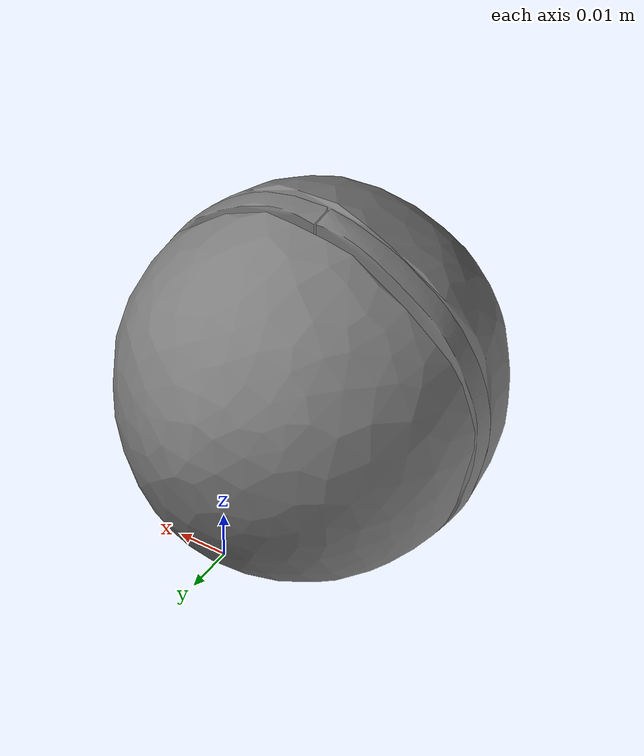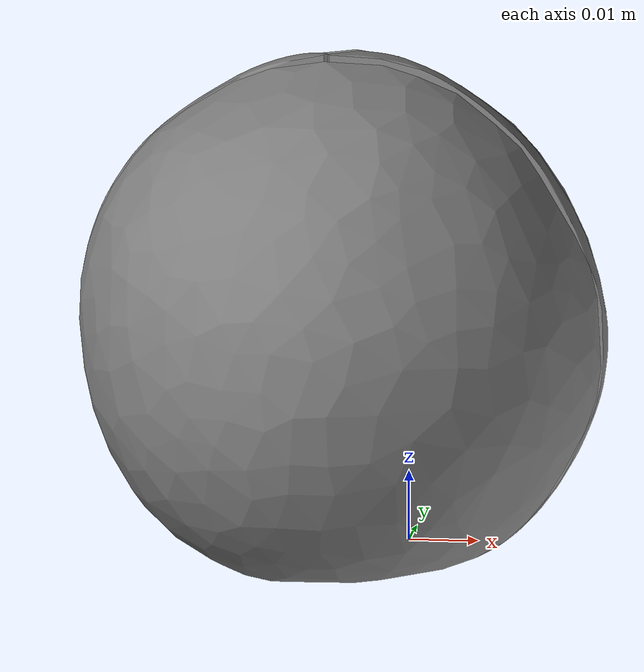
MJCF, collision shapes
<mujoco model="ycb_017_orange">
  <compiler meshdir="meshes" texturedir="meshes" angle="radian"/>
  <default>
    <default class="visual"><geom contype="0" conaffinity="0" group="2" density="0"/></default>
    <default class="collision"><geom group="3"/></default>
  </default>
  <asset>
    <texture name="ycb_017_orange_tex" type="2d" file="ycb_017_orange_texture.png"/>
    <material name="ycb_017_orange_mat" texture="ycb_017_orange_tex" specular="0.2" shininess="0.3"/>
    <mesh name="ycb_017_orange_visual" file="ycb_017_orange_visual.obj"/>
    <mesh name="ycb_017_orange_hull0" file="ycb_017_orange_hull0.obj"/>
    <mesh name="ycb_017_orange_hull1" file="ycb_017_orange_hull1.obj"/>
    <mesh name="ycb_017_orange_hull2" file="ycb_017_orange_hull2.obj"/>
    <mesh name="ycb_017_orange_hull3" file="ycb_017_orange_hull3.obj"/>
  </asset>
  <worldbody>
    <body name="object" pos="0 0 0">
      <freejoint name="object_free"/>
      <geom type="mesh" mesh="ycb_017_orange_visual" material="ycb_017_orange_mat" class="visual"/>
      <geom type="mesh" mesh="ycb_017_orange_hull0" class="collision"/>
      <geom type="mesh" mesh="ycb_017_orange_hull1" class="collision"/>
      <geom type="mesh" mesh="ycb_017_orange_hull2" class="collision"/>
      <geom type="mesh" mesh="ycb_017_orange_hull3" class="collision"/>
    </body>
  </worldbody>
</mujoco>
